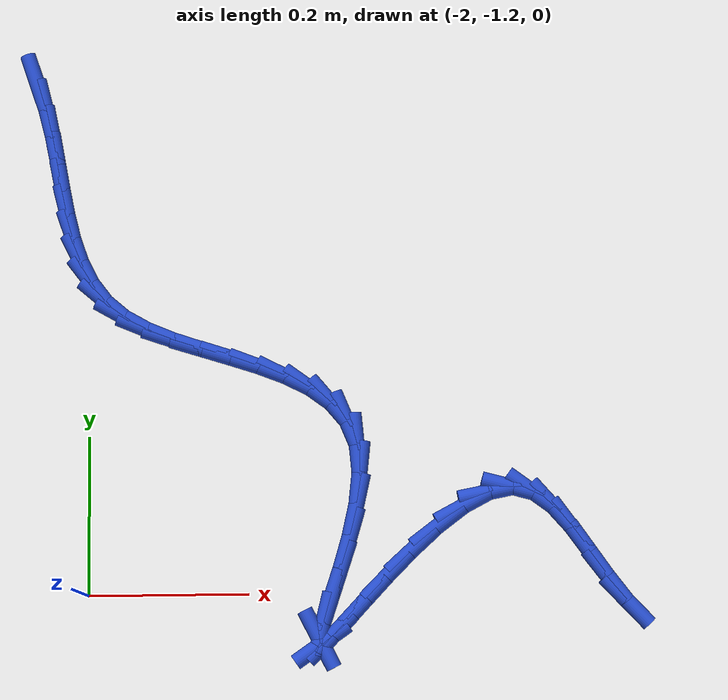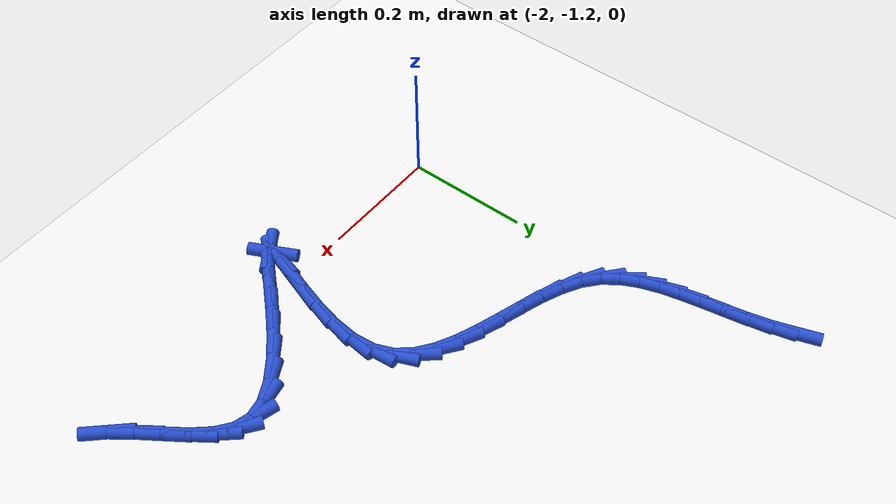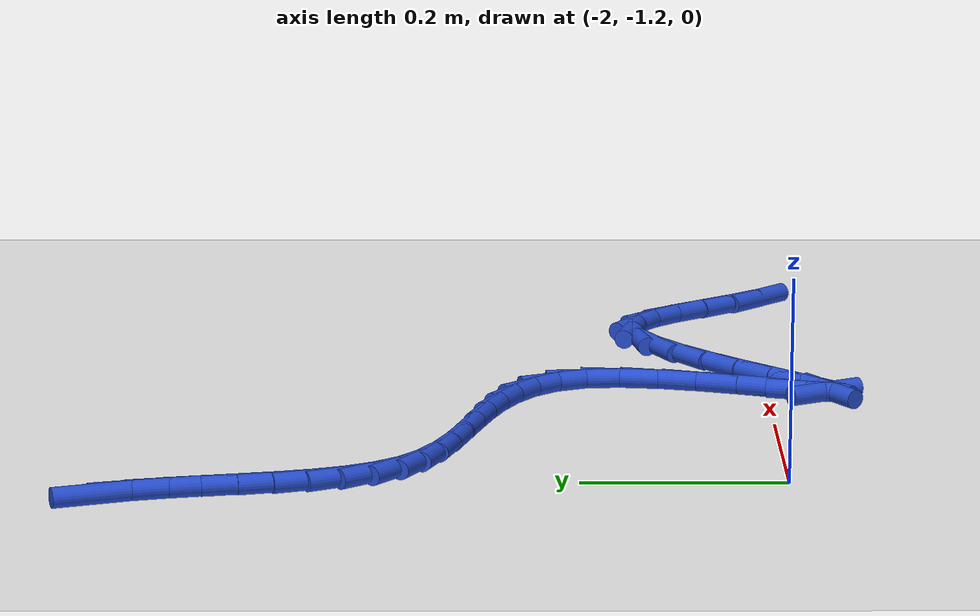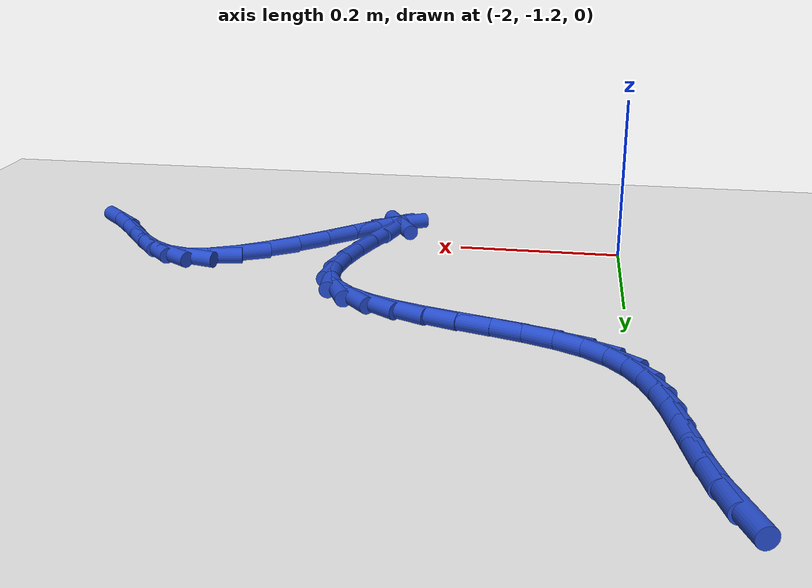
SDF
<sdf version="1.6">
 <world name="default">
  <model name="ground_plane">
   <static>1</static>
   <link name="link">
    <collision name="collision">
     <geometry><plane><normal>0 0 1</normal><size>100 100</size></plane></geometry>
     <surface><friction><ode><mu>100</mu><mu2>50</mu2></ode></friction></surface>
    </collision>
    <visual name="visual">
     <cast_shadows>0</cast_shadows>
     <geometry><plane><normal>0 0 1</normal><size>100 100</size></plane></geometry>
     <material>
      <script><uri>file://media/materials/scripts/gazebo.material</uri><name>Gazebo/WhiteGlow</name></script>
     </material>
    </visual>
   </link>
  </model>
  <model name="line">
   <link name="link_156">
    <pose>-2.0674121999945765 -0.5428359088712132 0.01 0 1.57 -1.2497366852584755</pose>
    <collision name="collision">
     <geometry><cylinder><radius>0.01</radius><length>0.08</length></cylinder></geometry>
    </collision>
    <visual name="visual">
     <material>
      <script><name>Gazebo/Blue</name><uri>file://media/materials/scripts/gazebo.material</uri></script>
     </material>
     <geometry><cylinder><radius>0.01</radius><length>0.08</length></cylinder></geometry>
    </visual>
   </link>
   <link name="link_157">
    <pose>-2.0560920379074226 -0.5768747700515221 0.01 0 1.57 -1.3297597992812638</pose>
    <collision name="collision">
     <geometry><cylinder><radius>0.01</radius><length>0.08</length></cylinder></geometry>
    </collision>
    <visual name="visual">
     <material>
      <script><name>Gazebo/Blue</name><uri>file://media/materials/scripts/gazebo.material</uri></script>
     </material>
     <geometry><cylinder><radius>0.01</radius><length>0.08</length></cylinder></geometry>
    </visual>
   </link>
   <link name="link_158">
    <pose>-2.0475366888348674 -0.611678702999857 0.01 0 1.57 -1.378321417152134</pose>
    <collision name="collision">
     <geometry><cylinder><radius>0.01</radius><length>0.08</length></cylinder></geometry>
    </collision>
    <visual name="visual">
     <material>
      <script><name>Gazebo/Blue</name><uri>file://media/materials/scripts/gazebo.material</uri></script>
     </material>
     <geometry><cylinder><radius>0.01</radius><length>0.08</length></cylinder></geometry>
    </visual>
   </link>
   <link name="link_159">
    <pose>-2.040717451494772 -0.6466693353116464 0.01 0 1.57 -1.395952361492124</pose>
    <collision name="collision">
     <geometry><cylinder><radius>0.01</radius><length>0.08</length></cylinder></geometry>
    </collision>
    <visual name="visual">
     <material>
      <script><name>Gazebo/Blue</name><uri>file://media/materials/scripts/gazebo.material</uri></script>
     </material>
     <geometry><cylinder><radius>0.01</radius><length>0.08</length></cylinder></geometry>
    </visual>
   </link>
   <link name="link_160">
    <pose>-2.0346056246050015 -0.6812682945823186 0.01 0 1.57 -1.3817826568312304</pose>
    <collision name="collision">
     <geometry><cylinder><radius>0.01</radius><length>0.08</length></cylinder></geometry>
    </collision>
    <visual name="visual">
     <material>
      <script><name>Gazebo/Blue</name><uri>file://media/materials/scripts/gazebo.material</uri></script>
     </material>
     <geometry><cylinder><radius>0.01</radius><length>0.08</length></cylinder></geometry>
    </visual>
   </link>
   <link name="link_161">
    <pose>-2.028172506883417 -0.7148972084073021 0.01 0 1.57 -1.3327831729948265</pose>
    <collision name="collision">
     <geometry><cylinder><radius>0.01</radius><length>0.08</length></cylinder></geometry>
    </collision>
    <visual name="visual">
     <material>
      <script><name>Gazebo/Blue</name><uri>file://media/materials/scripts/gazebo.material</uri></script>
     </material>
     <geometry><cylinder><radius>0.01</radius><length>0.08</length></cylinder></geometry>
    </visual>
   </link>
   <link name="link_162">
    <pose>-2.020389397047883 -0.7469777043820254 0.01 0 1.57 -1.2437300011261347</pose>
    <collision name="collision">
     <geometry><cylinder><radius>0.01</radius><length>0.08</length></cylinder></geometry>
    </collision>
    <visual name="visual">
     <material>
      <script><name>Gazebo/Blue</name><uri>file://media/materials/scripts/gazebo.material</uri></script>
     </material>
     <geometry><cylinder><radius>0.01</radius><length>0.08</length></cylinder></geometry>
    </visual>
   </link>
   <link name="link_163">
    <pose>-2.010227593816261 -0.7769314101019167 0.01 0 1.57 -1.1087669513471328</pose>
    <collision name="collision">
     <geometry><cylinder><radius>0.01</radius><length>0.08</length></cylinder></geometry>
    </collision>
    <visual name="visual">
     <material>
      <script><name>Gazebo/Blue</name><uri>file://media/materials/scripts/gazebo.material</uri></script>
     </material>
     <geometry><cylinder><radius>0.01</radius><length>0.08</length></cylinder></geometry>
    </visual>
   </link>
   <link name="link_164">
    <pose>-1.9966583959064153 -0.8041799531624046 0.01 0 1.57 -0.9264535119631184</pose>
    <collision name="collision">
     <geometry><cylinder><radius>0.01</radius><length>0.08</length></cylinder></geometry>
    </collision>
    <visual name="visual">
     <material>
      <script><name>Gazebo/Blue</name><uri>file://media/materials/scripts/gazebo.material</uri></script>
     </material>
     <geometry><cylinder><radius>0.01</radius><length>0.08</length></cylinder></geometry>
    </visual>
   </link>
   <link name="link_165">
    <pose>-1.9786531020362073 -0.8281449611589184 0.01 0 1.57 -0.709354898100053</pose>
    <collision name="collision">
     <geometry><cylinder><radius>0.01</radius><length>0.08</length></cylinder></geometry>
    </collision>
    <visual name="visual">
     <material>
      <script><name>Gazebo/Blue</name><uri>file://media/materials/scripts/gazebo.material</uri></script>
     </material>
     <geometry><cylinder><radius>0.01</radius><length>0.08</length></cylinder></geometry>
    </visual>
   </link>
   <link name="link_166">
    <pose>-1.955212072699514 -0.8482669186648567 0.01 0 1.57 -0.517409517894861</pose>
    <collision name="collision">
     <geometry><cylinder><radius>0.01</radius><length>0.08</length></cylinder></geometry>
    </collision>
    <visual name="visual">
     <material>
      <script><name>Gazebo/Blue</name><uri>file://media/materials/scripts/gazebo.material</uri></script>
     </material>
     <geometry><cylinder><radius>0.01</radius><length>0.08</length></cylinder></geometry>
    </visual>
   </link>
   <link name="link_167">
    <pose>-1.9263899360742773 -0.8646703807139459 0.01 0 1.57 -0.39466885282840836</pose>
    <collision name="collision">
     <geometry><cylinder><radius>0.01</radius><length>0.08</length></cylinder></geometry>
    </collision>
    <visual name="visual">
     <material>
      <script><name>Gazebo/Blue</name><uri>file://media/materials/scripts/gazebo.material</uri></script>
     </material>
     <geometry><cylinder><radius>0.01</radius><length>0.08</length></cylinder></geometry>
    </visual>
   </link>
   <link name="link_168">
    <pose>-1.8935687023810304 -0.8783411853505044 0.01 0 1.57 -0.3266886733839909</pose>
    <collision name="collision">
     <geometry><cylinder><radius>0.01</radius><length>0.08</length></cylinder></geometry>
    </collision>
    <visual name="visual">
     <material>
      <script><name>Gazebo/Blue</name><uri>file://media/materials/scripts/gazebo.material</uri></script>
     </material>
     <geometry><cylinder><radius>0.01</radius><length>0.08</length></cylinder></geometry>
    </visual>
   </link>
   <link name="link_169">
    <pose>-1.858214976760121 -0.890320060744587 0.01 0 1.57 -0.3015471511913052</pose>
    <collision name="collision">
     <geometry><cylinder><radius>0.01</radius><length>0.08</length></cylinder></geometry>
    </collision>
    <visual name="visual">
     <material>
      <script><name>Gazebo/Blue</name><uri>file://media/materials/scripts/gazebo.material</uri></script>
     </material>
     <geometry><cylinder><radius>0.01</radius><length>0.08</length></cylinder></geometry>
    </visual>
   </link>
   <link name="link_170">
    <pose>-1.8217953643518938 -0.901647735066247 0.01 0 1.57 -0.31450962161851326</pose>
    <collision name="collision">
     <geometry><cylinder><radius>0.01</radius><length>0.08</length></cylinder></geometry>
    </collision>
    <visual name="visual">
     <material>
      <script><name>Gazebo/Blue</name><uri>file://media/materials/scripts/gazebo.material</uri></script>
     </material>
     <geometry><cylinder><radius>0.01</radius><length>0.08</length></cylinder></geometry>
    </visual>
   </link>
   <link name="link_171">
    <pose>-1.7857764702966967 -0.9133649364855388 0.01 0 1.57 -0.3674859423388558</pose>
    <collision name="collision">
     <geometry><cylinder><radius>0.01</radius><length>0.08</length></cylinder></geometry>
    </collision>
    <visual name="visual">
     <material>
      <script><name>Gazebo/Blue</name><uri>file://media/materials/scripts/gazebo.material</uri></script>
     </material>
     <geometry><cylinder><radius>0.01</radius><length>0.08</length></cylinder></geometry>
    </visual>
   </link>
   <link name="link_172">
    <pose>-1.7516248997348745 -0.9265123931725167 0.01 0 1.57 -0.4690743274074367</pose>
    <collision name="collision">
     <geometry><cylinder><radius>0.01</radius><length>0.08</length></cylinder></geometry>
    </collision>
    <visual name="visual">
     <material>
      <script><name>Gazebo/Blue</name><uri>file://media/materials/scripts/gazebo.material</uri></script>
     </material>
     <geometry><cylinder><radius>0.01</radius><length>0.08</length></cylinder></geometry>
    </visual>
   </link>
   <link name="link_173">
    <pose>-1.7208072578067763 -0.9421308332972343 0.01 0 1.57 -0.6340208522734315</pose>
    <collision name="collision">
     <geometry><cylinder><radius>0.01</radius><length>0.08</length></cylinder></geometry>
    </collision>
    <visual name="visual">
     <material>
      <script><name>Gazebo/Blue</name><uri>file://media/materials/scripts/gazebo.material</uri></script>
     </material>
     <geometry><cylinder><radius>0.01</radius><length>0.08</length></cylinder></geometry>
    </visual>
   </link>
   <link name="link_174">
    <pose>-1.6947901496527475 -0.9612609850297462 0.01 0 1.57 -0.8756974130945443</pose>
    <collision name="collision">
     <geometry><cylinder><radius>0.01</radius><length>0.08</length></cylinder></geometry>
    </collision>
    <visual name="visual">
     <material>
      <script><name>Gazebo/Blue</name><uri>file://media/materials/scripts/gazebo.material</uri></script>
     </material>
     <geometry><cylinder><radius>0.01</radius><length>0.08</length></cylinder></geometry>
    </visual>
   </link>
   <link name="link_175">
    <pose>-1.6750401804131345 -0.9849435765401063 0.01 0 1.57 -1.1813142162639536</pose>
    <collision name="collision">
     <geometry><cylinder><radius>0.01</radius><length>0.08</length></cylinder></geometry>
    </collision>
    <visual name="visual">
     <material>
      <script><name>Gazebo/Blue</name><uri>file://media/materials/scripts/gazebo.material</uri></script>
     </material>
     <geometry><cylinder><radius>0.01</radius><length>0.08</length></cylinder></geometry>
    </visual>
   </link>
   <link name="link_176">
    <pose>-1.663023955228283 -1.0142193359983687 0.01 0 1.57 -1.4837776357350723</pose>
    <collision name="collision">
     <geometry><cylinder><radius>0.01</radius><length>0.08</length></cylinder></geometry>
    </collision>
    <visual name="visual">
     <material>
      <script><name>Gazebo/Blue</name><uri>file://media/materials/scripts/gazebo.material</uri></script>
     </material>
     <geometry><cylinder><radius>0.01</radius><length>0.08</length></cylinder></geometry>
    </visual>
   </link>
   <link name="link_177">
    <pose>-1.659916712477015 -1.049836923542897 0.01 0 1.57 1.4590791069919353</pose>
    <collision name="collision">
     <geometry><cylinder><radius>0.01</radius><length>0.08</length></cylinder></geometry>
    </collision>
    <visual name="visual">
     <material>
      <script><name>Gazebo/Blue</name><uri>file://media/materials/scripts/gazebo.material</uri></script>
     </material>
     <geometry><cylinder><radius>0.01</radius><length>0.08</length></cylinder></geometry>
    </visual>
   </link>
   <link name="link_178">
    <pose>-1.6644309423390933 -1.090076323697581 0.01 0 1.57 1.3453310714667825</pose>
    <collision name="collision">
     <geometry><cylinder><radius>0.01</radius><length>0.08</length></cylinder></geometry>
    </collision>
    <visual name="visual">
     <material>
      <script><name>Gazebo/Blue</name><uri>file://media/materials/scripts/gazebo.material</uri></script>
     </material>
     <geometry><cylinder><radius>0.01</radius><length>0.08</length></cylinder></geometry>
    </visual>
   </link>
   <link name="link_179">
    <pose>-1.6740414633244192 -1.1319768704515607 0.01 0 1.57 1.2794575151360439</pose>
    <collision name="collision">
     <geometry><cylinder><radius>0.01</radius><length>0.08</length></cylinder></geometry>
    </collision>
    <visual name="visual">
     <material>
      <script><name>Gazebo/Blue</name><uri>file://media/materials/scripts/gazebo.material</uri></script>
     </material>
     <geometry><cylinder><radius>0.01</radius><length>0.08</length></cylinder></geometry>
    </visual>
   </link>
   <link name="link_180">
    <pose>-1.6862137380512634 -1.1725685193843067 0.01 0 1.57 1.2466867524697236</pose>
    <collision name="collision">
     <geometry><cylinder><radius>0.01</radius><length>0.08</length></cylinder></geometry>
    </collision>
    <visual name="visual">
     <material>
      <script><name>Gazebo/Blue</name><uri>file://media/materials/scripts/gazebo.material</uri></script>
     </material>
     <geometry><cylinder><radius>0.01</radius><length>0.08</length></cylinder></geometry>
    </visual>
   </link>
   <link name="link_181">
    <pose>-1.6984132291378968 -1.2088812260752921 0.01 0 1.57 1.2489137562372477</pose>
    <collision name="collision">
     <geometry><cylinder><radius>0.01</radius><length>0.08</length></cylinder></geometry>
    </collision>
    <visual name="visual">
     <material>
      <script><name>Gazebo/Blue</name><uri>file://media/materials/scripts/gazebo.material</uri></script>
     </material>
     <geometry><cylinder><radius>0.01</radius><length>0.08</length></cylinder></geometry>
    </visual>
   </link>
   <link name="link_182">
    <pose>-1.7081053992025903 -1.2379449461039862 0.01 0 1.57 1.3288595777959211</pose>
    <collision name="collision">
     <geometry><cylinder><radius>0.01</radius><length>0.08</length></cylinder></geometry>
    </collision>
    <visual name="visual">
     <material>
      <script><name>Gazebo/Blue</name><uri>file://media/materials/scripts/gazebo.material</uri></script>
     </material>
     <geometry><cylinder><radius>0.01</radius><length>0.08</length></cylinder></geometry>
    </visual>
   </link>
   <link name="link_183">
    <pose>-1.7127557108636147 -1.2567896350498622 0.01 0 1.57 -1.1031471353847908</pose>
    <collision name="collision">
     <geometry><cylinder><radius>0.01</radius><length>0.08</length></cylinder></geometry>
    </collision>
    <visual name="visual">
     <material>
      <script><name>Gazebo/Blue</name><uri>file://media/materials/scripts/gazebo.material</uri></script>
     </material>
     <geometry><cylinder><radius>0.01</radius><length>0.08</length></cylinder></geometry>
    </visual>
   </link>
   <link name="link_184">
    <pose>-1.7098688845340484 -1.2625059866258639 0.01 0 1.57 0.6056265868209637</pose>
    <collision name="collision">
     <geometry><cylinder><radius>0.01</radius><length>0.08</length></cylinder></geometry>
    </collision>
    <visual name="visual">
     <material>
      <script><name>Gazebo/Blue</name><uri>file://media/materials/scripts/gazebo.material</uri></script>
     </material>
     <geometry><cylinder><radius>0.01</radius><length>0.08</length></cylinder></geometry>
    </visual>
   </link>
   <link name="link_185">
    <pose>-1.698559073800203 -1.2546747469630506 0.01 0 1.57 0.7856254817518045</pose>
    <collision name="collision">
     <geometry><cylinder><radius>0.01</radius><length>0.08</length></cylinder></geometry>
    </collision>
    <visual name="visual">
     <material>
      <script><name>Gazebo/Blue</name><uri>file://media/materials/scripts/gazebo.material</uri></script>
     </material>
     <geometry><cylinder><radius>0.01</radius><length>0.08</length></cylinder></geometry>
    </visual>
   </link>
   <link name="link_186">
    <pose>-1.6800806434400626 -1.2361879137198748 0.01 0 1.57 0.82072946611057</pose>
    <collision name="collision">
     <geometry><cylinder><radius>0.01</radius><length>0.08</length></cylinder></geometry>
    </collision>
    <visual name="visual">
     <material>
      <script><name>Gazebo/Blue</name><uri>file://media/materials/scripts/gazebo.material</uri></script>
     </material>
     <geometry><cylinder><radius>0.01</radius><length>0.08</length></cylinder></geometry>
    </visual>
   </link>
   <link name="link_187">
    <pose>-1.6558360823688725 -1.2101666564597189 0.01 0 1.57 0.8163202971490052</pose>
    <collision name="collision">
     <geometry><cylinder><radius>0.01</radius><length>0.08</length></cylinder></geometry>
    </collision>
    <visual name="visual">
     <material>
      <script><name>Gazebo/Blue</name><uri>file://media/materials/scripts/gazebo.material</uri></script>
     </material>
     <geometry><cylinder><radius>0.01</radius><length>0.08</length></cylinder></geometry>
    </visual>
   </link>
   <link name="link_188">
    <pose>-1.6272278795018766 -1.179732144745963 0.01 0 1.57 0.7878823749009434</pose>
    <collision name="collision">
     <geometry><cylinder><radius>0.01</radius><length>0.08</length></cylinder></geometry>
    </collision>
    <visual name="visual">
     <material>
      <script><name>Gazebo/Blue</name><uri>file://media/materials/scripts/gazebo.material</uri></script>
     </material>
     <geometry><cylinder><radius>0.01</radius><length>0.08</length></cylinder></geometry>
    </visual>
   </link>
   <link name="link_189">
    <pose>-1.5956585237543206 -1.14800554814199 0.01 0 1.57 0.7341858533127524</pose>
    <collision name="collision">
     <geometry><cylinder><radius>0.01</radius><length>0.08</length></cylinder></geometry>
    </collision>
    <visual name="visual">
     <material>
      <script><name>Gazebo/Blue</name><uri>file://media/materials/scripts/gazebo.material</uri></script>
     </material>
     <geometry><cylinder><radius>0.01</radius><length>0.08</length></cylinder></geometry>
    </visual>
   </link>
   <link name="link_190">
    <pose>-1.5625305040414486 -1.1181080362111806 0.01 0 1.57 0.6431955315635957</pose>
    <collision name="collision">
     <geometry><cylinder><radius>0.01</radius><length>0.08</length></cylinder></geometry>
    </collision>
    <visual name="visual">
     <material>
      <script><name>Gazebo/Blue</name><uri>file://media/materials/scripts/gazebo.material</uri></script>
     </material>
     <geometry><cylinder><radius>0.01</radius><length>0.08</length></cylinder></geometry>
    </visual>
   </link>
   <link name="link_191">
    <pose>-1.529246309278505 -1.0931607785169164 0.01 0 1.57 0.4848149610548776</pose>
    <collision name="collision">
     <geometry><cylinder><radius>0.01</radius><length>0.08</length></cylinder></geometry>
    </collision>
    <visual name="visual">
     <material>
      <script><name>Gazebo/Blue</name><uri>file://media/materials/scripts/gazebo.material</uri></script>
     </material>
     <geometry><cylinder><radius>0.01</radius><length>0.08</length></cylinder></geometry>
    </visual>
   </link>
   <link name="link_192">
    <pose>-1.497208428380734 -1.0762849446225784 0.01 0 1.57 0.1912086232694068</pose>
    <collision name="collision">
     <geometry><cylinder><radius>0.01</radius><length>0.08</length></cylinder></geometry>
    </collision>
    <visual name="visual">
     <material>
      <script><name>Gazebo/Blue</name><uri>file://media/materials/scripts/gazebo.material</uri></script>
     </material>
     <geometry><cylinder><radius>0.01</radius><length>0.08</length></cylinder></geometry>
    </visual>
   </link>
   <link name="link_193">
    <pose>-1.4678167730364051 -1.0705955003176286 0.01 0 1.57 -0.2629343892555658</pose>
    <collision name="collision">
     <geometry><cylinder><radius>0.01</radius><length>0.08</length></cylinder></geometry>
    </collision>
    <visual name="visual">
     <material>
      <script><name>Gazebo/Blue</name><uri>file://media/materials/scripts/gazebo.material</uri></script>
     </material>
     <geometry><cylinder><radius>0.01</radius><length>0.08</length></cylinder></geometry>
    </visual>
   </link>
   <link name="link_194">
    <pose>-1.4418025157320782 -1.077597655301985 0.01 0 1.57 -0.6394939274025093</pose>
    <collision name="collision">
     <geometry><cylinder><radius>0.01</radius><length>0.08</length></cylinder></geometry>
    </collision>
    <visual name="visual">
     <material>
      <script><name>Gazebo/Blue</name><uri>file://media/materials/scripts/gazebo.material</uri></script>
     </material>
     <geometry><cylinder><radius>0.01</radius><length>0.08</length></cylinder></geometry>
    </visual>
   </link>
   <link name="link_195">
    <pose>-1.418339676365717 -1.0950483182107602 0.01 0 1.57 -0.8525226370972534</pose>
    <collision name="collision">
     <geometry><cylinder><radius>0.01</radius><length>0.08</length></cylinder></geometry>
    </collision>
    <visual name="visual">
     <material>
      <script><name>Gazebo/Blue</name><uri>file://media/materials/scripts/gazebo.material</uri></script>
     </material>
     <geometry><cylinder><radius>0.01</radius><length>0.08</length></cylinder></geometry>
    </visual>
   </link>
   <link name="link_196">
    <pose>-1.3963811074763046 -1.1201720144988687 0.01 0 1.57 -0.9492755118724324</pose>
    <collision name="collision">
     <geometry><cylinder><radius>0.01</radius><length>0.08</length></cylinder></geometry>
    </collision>
    <visual name="visual">
     <material>
      <script><name>Gazebo/Blue</name><uri>file://media/materials/scripts/gazebo.material</uri></script>
     </material>
     <geometry><cylinder><radius>0.01</radius><length>0.08</length></cylinder></geometry>
    </visual>
   </link>
   <link name="link_197">
    <pose>-1.3748796616028238 -1.1501932696212256 0.01 0 1.57 -0.9686584702783012</pose>
    <collision name="collision">
     <geometry><cylinder><radius>0.01</radius><length>0.08</length></cylinder></geometry>
    </collision>
    <visual name="visual">
     <material>
      <script><name>Gazebo/Blue</name><uri>file://media/materials/scripts/gazebo.material</uri></script>
     </material>
     <geometry><cylinder><radius>0.01</radius><length>0.08</length></cylinder></geometry>
    </visual>
   </link>
   <link name="link_198">
    <pose>-1.3527881912842576 -1.1823366090327445 0.01 0 1.57 -0.9250394212736154</pose>
    <collision name="collision">
     <geometry><cylinder><radius>0.01</radius><length>0.08</length></cylinder></geometry>
    </collision>
    <visual name="visual">
     <material>
      <script><name>Gazebo/Blue</name><uri>file://media/materials/scripts/gazebo.material</uri></script>
     </material>
     <geometry><cylinder><radius>0.01</radius><length>0.08</length></cylinder></geometry>
    </visual>
   </link>
   <link name="link_199">
    <pose>-1.3290595490595885 -1.21382655818834 0.01 0 1.57 -0.81746864890994</pose>
    <collision name="collision">
     <geometry><cylinder><radius>0.01</radius><length>0.08</length></cylinder></geometry>
    </collision>
    <visual name="visual">
     <material>
      <script><name>Gazebo/Blue</name><uri>file://media/materials/scripts/gazebo.material</uri></script>
     </material>
     <geometry><cylinder><radius>0.01</radius><length>0.08</length></cylinder></geometry>
    </visual>
   </link>
  </model>
 </world>
</sdf>
